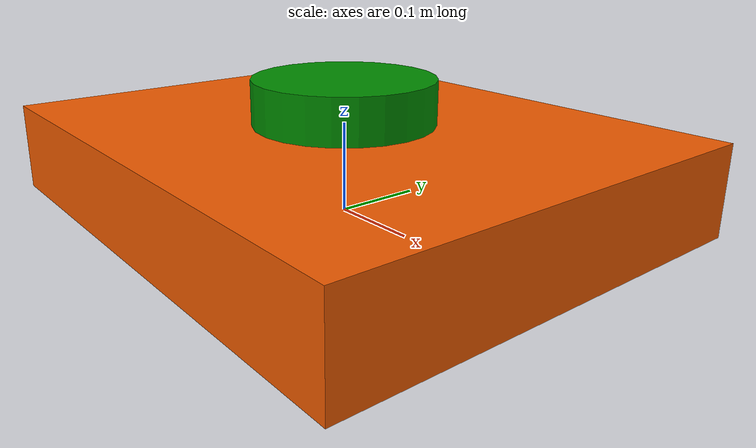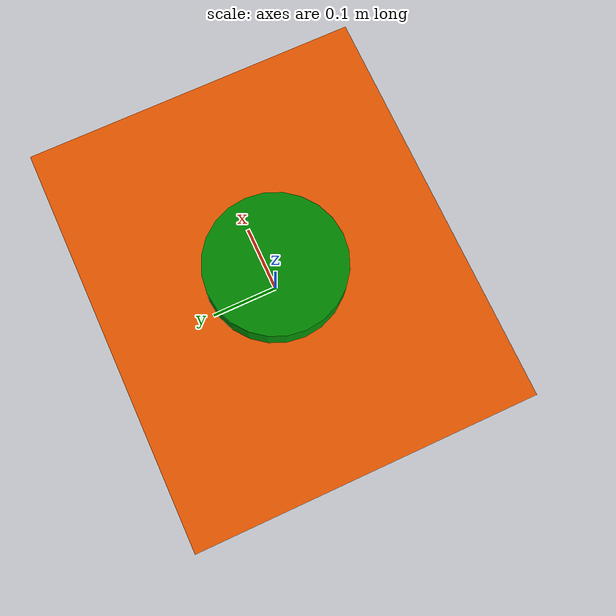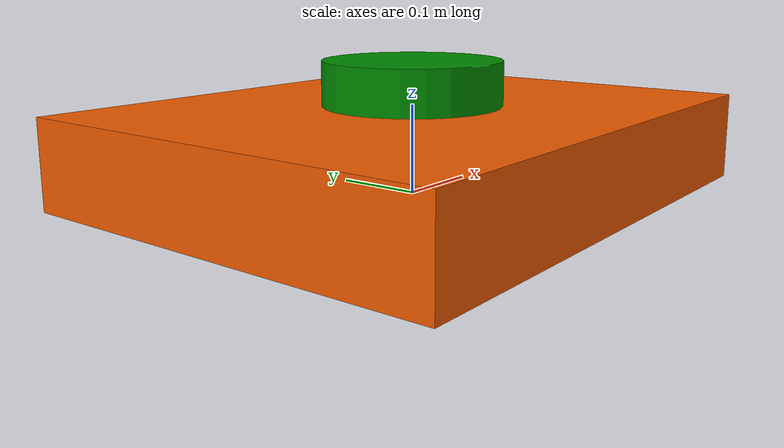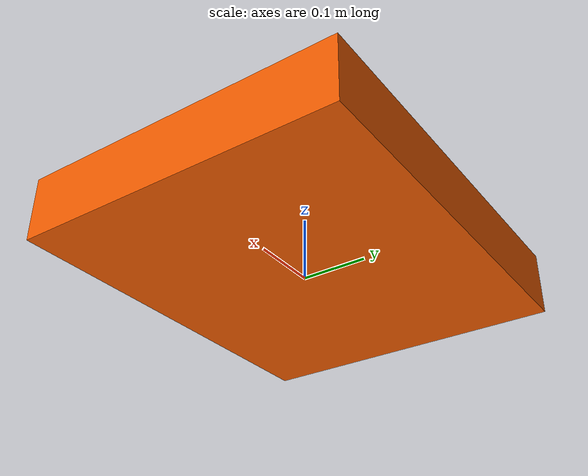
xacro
<?xml version="1.0"?>
<robot name="robot_model" xmlns:xacro="http://www.ros.org/wiki/xacro">

  <material name="brown">
    <color rgba="240 91 0 1"/>
  </material>

  <material name="green">
    <color rgba="0 140 0 1"/>
  </material>

    <link name="base_link">
      <visual>
        <geometry>
          <box size="0.6 0.5 0.1"/>
        </geometry>
        <origin rpy="0 0 0" xyz="0 0 0.05"/>
        <material name="brown"/>
      </visual>
    </link>

    <joint name="base_link_to_laser" type="fixed">
      <parent link="base_link"/>
      <child link="laser"/>
    </joint>

    <link name="laser">
      <visual>
        <geometry>
          <cylinder length="0.06" radius="0.1"/>
        </geometry>
        <origin rpy="0 0 0" xyz="0 0 0.12"/>
        <material name="green"/>
      </visual>
    </link>

</robot>
